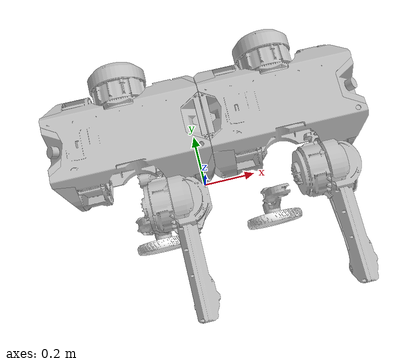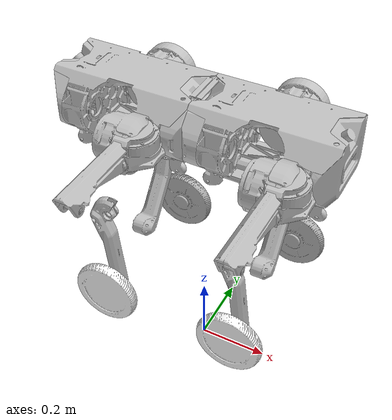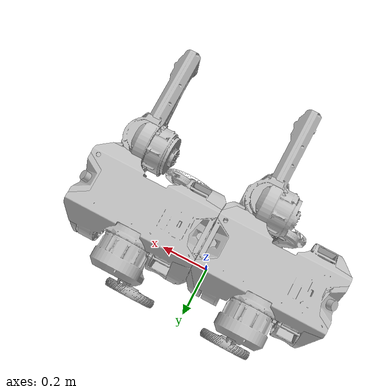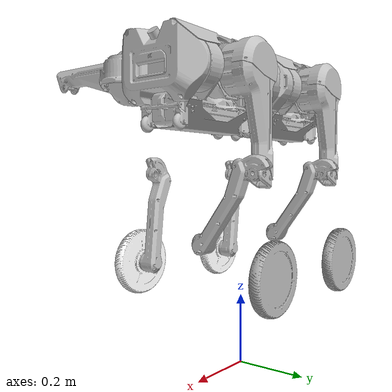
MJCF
<mujoco model="d1_description">
  <compiler angle="radian" meshdir="../../../../d1h_description/share/d1h_description/meshes/"
    autolimits="true" />
  <option cone="elliptic" impratio="100" />

  <default>
    <default class="d1">
      <geom friction="0.4" margin="0.001" condim="1" />
      <joint axis="0 1 0" damping="0.1" armature="0.01" frictionloss="0.2" />
      <default class="visual">
        <geom type="mesh" contype="0" conaffinity="0" group="2" density="0" />
      </default>
      <default class="collision">
        <geom group="3" />
      </default>
    </default>
  </default>

  <asset>
    <mesh name="base_link" file="base_link.STL" />
    <mesh name="funtion_Link" file="funtion_Link.STL" />
    <mesh name="docking_Link" file="docking_Link.STL" />
    <mesh name="L_hip" file="L_hip.STL" />
    <mesh name="L_thigh" file="L_thigh.STL" />
    <mesh name="L_calf" file="L_calf.STL" />
    <mesh name="L_foot" file="L_foot.STL" />
    <mesh name="R_hip" file="R_hip.STL" />
    <mesh name="R_thigh" file="R_thigh.STL" />
    <mesh name="R_calf" file="R_calf.STL" />
    <mesh name="R_foot" file="R_foot.STL" />
  </asset>

  <worldbody>
    <body name="base_link" pos="0 0 0.8" childclass="d1">
      <inertial pos="0.0298675 0.000146849 -0.0146567"
        quat="0.00194962 0.703088 0.00143987 0.711099" mass="22.6528"
        diaginertia="1.04095 1.02354 0.194945" />
      <site name="trunk_imu" size="0.01" />
      <joint name="floating_base_joint" type="free" limited="false" actuatorfrclimited="false" />

      <geom pos="0.1875 0 0" quat="1 0 0 0" type="mesh" class="visual"
        rgba="0.75294 0.75294 0.75294 1" mesh="base_link" />
      <geom size="0.1375 0.075 0.0875" pos="0.1875 0 0" type="box" class="collision"
        rgba="0.75294 0.75294 0.75294 1" />
      <geom size="0.155 0.06 0.03" pos="0.1875 0 -0.12" type="box" class="collision"
        rgba="0.75294 0.75294 0.75294 1" />
      <geom pos="0.342 0 0" quat="1 0 0 0" type="mesh" class="visual"
        rgba="0.75294 0.75294 0.75294 1" mesh="funtion_Link" />
      <geom size="0.02475 0.075 0.0875" pos="0.35 0 0" type="box" class="collision"
        rgba="0.75294 0.75294 0.75294 1" />
      <geom pos="0.0005 0 0" quat="1 0 0 0" type="mesh" class="visual"
        rgba="0.75294 0.75294 0.75294 1" mesh="docking_Link" />
      <geom size="0.04255 0.075 0.0875" pos="0.007 0 0" type="box" class="collision"
        rgba="0.75294 0.75294 0.75294 1" />
      <geom pos="-0.1875 0 0" quat="1 0 0 0" type="mesh" class="visual"
        rgba="0.75294 0.75294 0.75294 1" mesh="base_link" />
      <geom size="0.1375 0.075 0.0875" pos="-0.1875 0 0" type="box" class="collision"
        rgba="0.75294 0.75294 0.75294 1" />
      <geom size="0.155 0.06 0.03" pos="-0.1875 0 -0.12" type="box" class="collision"
        rgba="0.75294 0.75294 0.75294 1" />
      <geom pos="-0.342 0 0" quat="1.32679e-06 0 0 1" type="mesh" class="visual"
        rgba="0.75294 0.75294 0.75294 1" mesh="funtion_Link" />
      <geom size="0.02475 0.075 0.0875" pos="-0.35 2.12287e-08 0" quat="1.32679e-06 0 0 1"
        type="box" class="collision" rgba="0.75294 0.75294 0.75294 1" />
      <geom pos="-0.0005 0 0" quat="1.32679e-06 0 0 1" type="mesh" class="visual"
        rgba="0.75294 0.75294 0.75294 1" mesh="docking_Link" />
      <geom size="0.04255 0.075 0.0875" pos="-0.007 1.72483e-08 0" quat="1.32679e-06 0 0 1"
        type="box" class="collision" rgba="0.75294 0.75294 0.75294 1" />
      <body name="FL_hip" pos="0.282 0.0775 0" quat="0.499998 0.5 0.500002 0.5">
        <inertial pos="-0.0181435 -7.96e-06 -0.0936513"
          quat="0.999969 0.002505 0.00743808 -9.41679e-05" mass="1.69464"
          diaginertia="0.00379302 0.0027607 0.00214447" />
        <joint name="FL_hip_joint" pos="0 0 0" axis="0 0 1" range="-0.785398 0.785398"
          actuatorfrcrange="-80 80" />
        <geom type="mesh" class="visual" rgba="0.75294 0.75294 0.75294 1" mesh="L_hip" />
        <body name="FL_thigh" pos="0.0905 0 -0.0945" quat="0.500098 -0.5001 0.499902 -0.4999">
          <inertial pos="0.0289509 0.00356333 -0.0281156"
            quat="-0.0769104 0.652025 5.23527e-05 0.754286" mass="2.55232"
            diaginertia="0.0182972 0.0174693 0.00380065" />
          <joint name="FL_thigh_joint" pos="0 0 0" axis="0 0 1" range="-1.8326 3.40339"
            actuatorfrcrange="-80 80" />
          <geom type="mesh" class="visual" rgba="0.75294 0.75294 0.75294 1" mesh="L_thigh" />
          <geom size="0.13 0.045 0.025" pos="0.06 0.02 0" quat="0.991445 0 0 0.130526" type="box"
            class="collision" rgba="0.75294 0.75294 0.75294 1" />
          <body name="FL_calf" pos="0.25 0 0">
            <inertial pos="0.125063 0.00606587 0.00312587"
              quat="-0.0425827 0.690156 -0.0920102 0.716523" mass="0.46345"
              diaginertia="0.00494513 0.00490922 0.000208685" />
            <joint name="FL_calf_joint" pos="0 0 0" axis="0 0 1" range="-2.775 -0.855"
              actuatorfrcrange="-80 80" />
            <geom type="mesh" class="visual" rgba="0.75294 0.75294 0.75294 1" mesh="L_calf" />
            <geom size="0.12 0.02 0.025" pos="0.15 0.01 0" quat="0.9992 0 0 -0.0399893" type="box"
              class="collision" rgba="0.75294 0.75294 0.75294 1" />
            <body name="FL_foot" pos="0.25 0 0.052166">
              <inertial pos="-2.82e-06 0 -0.00091845" quat="0.334356 0.623085 -0.334302 0.623067"
                mass="1.6631" diaginertia="0.00760863 0.00398501 0.00393673" />
              <joint name="FL_foot_joint" pos="0 0 0" axis="0 0 1" range="-1000000 1000000"
                actuatorfrcrange="-12 12" />
              <geom type="mesh" class="visual" rgba="0.698039 0.698039 0.698039 1" mesh="L_foot" />
              <geom size="0.087 0.02" type="cylinder" class="collision"
                rgba="0.698039 0.698039 0.698039 1" />
            </body>
          </body>
        </body>
      </body>
      <body name="FR_hip" pos="0.282 -0.0775 0" quat="0.499998 0.5 0.500002 0.5">
        <inertial pos="0.0181435 -8e-06 -0.0936513" quat="0.999969 0.002505 -0.00743808 9.41679e-05"
          mass="1.69464" diaginertia="0.00379302 0.0027607 0.00214447" />
        <joint name="FR_hip_joint" pos="0 0 0" axis="0 0 1" range="-0.785398 0.785398"
          actuatorfrcrange="-80 80" />
        <geom type="mesh" class="visual" rgba="0.75294 0.75294 0.75294 1" mesh="R_hip" />
        <body name="FR_thigh" pos="-0.0905 0 -0.0945" quat="0.499898 -0.4999 0.500102 -0.5001">
          <inertial pos="0.0291816 0.00370278 0.0281157"
            quat="0.00133055 0.754556 0.0787582 0.651491" mass="2.55232"
            diaginertia="0.0182666 0.0174178 0.0038092" />
          <joint name="FR_thigh_joint" pos="0 0 0" axis="0 0 1" range="-1.8326 3.40339"
            actuatorfrcrange="-80 80" />
          <geom type="mesh" class="visual" rgba="0.752941 0.752941 0.752941 1" mesh="R_thigh" />
          <geom size="0.13 0.045 0.025" pos="0.06 0.02 0" quat="0.991445 0 0 0.130526" type="box"
            class="collision" rgba="0.752941 0.752941 0.752941 1" />
          <body name="FR_calf" pos="0.25 0 0">
            <inertial pos="0.125064 0.00606606 -0.0031258"
              quat="0.0919975 0.716523 0.0425713 0.690159" mass="0.463455"
              diaginertia="0.00494517 0.00490926 0.000208687" />
            <joint name="FR_calf_joint" pos="0 0 0" axis="0 0 1" range="-2.775 -0.855"
              actuatorfrcrange="-80 80" />
            <geom type="mesh" class="visual" rgba="0.752941 0.752941 0.752941 1" mesh="R_calf" />
            <geom size="0.12 0.02 0.025" pos="0.15 0.01 0" quat="0.9992 0 0 -0.0399893" type="box"
              class="collision" rgba="0.752941 0.752941 0.752941 1" />
            <body name="FR_foot" pos="0.25 0 -0.052166" quat="0.363988 0 0 0.931404">
              <inertial pos="-2.78e-06 0 0.00091859" quat="0.333846 0.623312 -0.3339 0.62333"
                mass="1.6631" diaginertia="0.00760867 0.00398497 0.0039368" />
              <joint name="FR_foot_joint" pos="0 0 0" axis="0 0 1" range="-1000000 1000000"
                actuatorfrcrange="-12 12" />
              <geom type="mesh" class="visual" rgba="1 1 1 1" mesh="R_foot" />
              <geom size="0.087 0.02" type="cylinder" class="collision" rgba="1 1 1 1" />
            </body>
          </body>
        </body>
      </body>
      <body name="RL_hip" pos="-0.093 0.0775 0" quat="0.499998 0.5 0.500002 0.5">
        <inertial pos="-0.0181435 -7.96e-06 -0.0936513"
          quat="0.999969 0.002505 0.00743808 -9.41679e-05" mass="1.69464"
          diaginertia="0.00379302 0.0027607 0.00214447" />
        <joint name="RL_hip_joint" pos="0 0 0" axis="0 0 1" range="-0.785398 0.785398"
          actuatorfrcrange="-80 80" />
        <geom type="mesh" class="visual" rgba="0.75294 0.75294 0.75294 1" mesh="L_hip" />
        <body name="RL_thigh" pos="0.0905 0 -0.0945" quat="0.500098 -0.5001 0.499902 -0.4999">
          <inertial pos="0.0289509 0.00356333 -0.0281156"
            quat="-0.0769104 0.652025 5.23527e-05 0.754286" mass="2.55232"
            diaginertia="0.0182972 0.0174693 0.00380065" />
          <joint name="RL_thigh_joint" pos="0 0 0" axis="0 0 1" range="-1.8326 3.40339"
            actuatorfrcrange="-80 80" />
          <geom type="mesh" class="visual" rgba="0.75294 0.75294 0.75294 1" mesh="L_thigh" />
          <geom size="0.13 0.045 0.025" pos="0.06 0.02 0" quat="0.991445 0 0 0.130526" type="box"
            class="collision" rgba="0.75294 0.75294 0.75294 1" />
          <body name="RL_calf" pos="0.25 0 0">
            <inertial pos="0.125063 0.00606587 0.00312587"
              quat="-0.0425827 0.690156 -0.0920102 0.716523" mass="0.46345"
              diaginertia="0.00494513 0.00490922 0.000208685" />
            <joint name="RL_calf_joint" pos="0 0 0" axis="0 0 1" range="-2.775 -0.855"
              actuatorfrcrange="-80 80" />
            <geom type="mesh" class="visual" rgba="0.75294 0.75294 0.75294 1" mesh="L_calf" />
            <geom size="0.12 0.02 0.025" pos="0.15 0.01 0" quat="0.9992 0 0 -0.0399893" type="box"
              class="collision" rgba="0.75294 0.75294 0.75294 1" />
            <body name="RL_foot" pos="0.25 0 0.052166">
              <inertial pos="-2.82e-06 0 -0.00091845" quat="0.334356 0.623085 -0.334302 0.623067"
                mass="1.6631" diaginertia="0.00760863 0.00398501 0.00393673" />
              <joint name="RL_foot_joint" pos="0 0 0" axis="0 0 1" range="-1000000 1000000"
                actuatorfrcrange="-12 12" />
              <geom type="mesh" class="visual" rgba="0.698039 0.698039 0.698039 1" mesh="L_foot" />
              <geom size="0.087 0.02" type="cylinder" class="collision"
                rgba="0.698039 0.698039 0.698039 1" />
            </body>
          </body>
        </body>
      </body>
      <body name="RR_hip" pos="-0.093 -0.0775 0" quat="0.499998 0.5 0.500002 0.5">
        <inertial pos="0.0181435 -8e-06 -0.0936513" quat="0.999969 0.002505 -0.00743808 9.41679e-05"
          mass="1.69464" diaginertia="0.00379302 0.0027607 0.00214447" />
        <joint name="RR_hip_joint" pos="0 0 0" axis="0 0 1" range="-0.785398 0.785398"
          actuatorfrcrange="-80 80" />
        <geom type="mesh" class="visual" rgba="0.75294 0.75294 0.75294 1" mesh="R_hip" />
        <body name="RR_thigh" pos="-0.0905 0 -0.0945" quat="0.499898 -0.4999 0.500102 -0.5001">
          <inertial pos="0.0291816 0.00370278 0.0281157"
            quat="0.00133055 0.754556 0.0787582 0.651491" mass="2.55232"
            diaginertia="0.0182666 0.0174178 0.0038092" />
          <joint name="RR_thigh_joint" pos="0 0 0" axis="0 0 1" range="-1.8326 3.40339"
            actuatorfrcrange="-80 80" />
          <geom type="mesh" class="visual" rgba="0.752941 0.752941 0.752941 1" mesh="R_thigh" />
          <geom size="0.13 0.045 0.025" pos="0.06 0.02 0" quat="0.991445 0 0 0.130526" type="box"
            class="collision" rgba="0.752941 0.752941 0.752941 1" />
          <body name="RR_calf" pos="0.25 0 0">
            <inertial pos="0.125064 0.00606606 -0.0031258"
              quat="0.0919975 0.716523 0.0425713 0.690159" mass="0.463455"
              diaginertia="0.00494517 0.00490926 0.000208687" />
            <joint name="RR_calf_joint" pos="0 0 0" axis="0 0 1" range="-2.775 -0.855"
              actuatorfrcrange="-80 80" />
            <geom type="mesh" class="visual" rgba="0.752941 0.752941 0.752941 1" mesh="R_calf" />
            <geom size="0.12 0.02 0.025" pos="0.15 0.01 0" quat="0.9992 0 0 -0.0399893" type="box"
              class="collision" rgba="0.752941 0.752941 0.752941 1" />
            <body name="RR_foot" pos="0.25 0 -0.052166" quat="0.363988 0 0 0.931404">
              <inertial pos="-2.78e-06 0 0.00091859" quat="0.333846 0.623312 -0.3339 0.62333"
                mass="1.6631" diaginertia="0.00760867 0.00398497 0.0039368" />
              <joint name="RR_foot_joint" pos="0 0 0" axis="0 0 1" range="-1000000 1000000"
                actuatorfrcrange="-12 12" />
              <geom type="mesh" class="visual" rgba="1 1 1 1" mesh="R_foot" />
              <geom size="0.087 0.02" type="cylinder" class="collision" rgba="1 1 1 1" />
            </body>
          </body>
        </body>
      </body>
    </body>
  </worldbody>
  <actuator>
    <motor name="FL_hip" joint="FL_hip_joint" />
    <motor name="FL_thigh" joint="FL_thigh_joint" />
    <motor name="FL_calf" joint="FL_calf_joint" />
    <motor name="FL_foot" joint="FL_foot_joint" />

    <motor name="FR_hip" joint="FR_hip_joint" />
    <motor name="FR_thigh" joint="FR_thigh_joint" />
    <motor name="FR_calf" joint="FR_calf_joint" />
    <motor name="FR_foot" joint="FR_foot_joint" />

    <motor name="RL_hip" joint="RL_hip_joint" />
    <motor name="RL_thigh" joint="RL_thigh_joint" />
    <motor name="RL_calf" joint="RL_calf_joint" />
    <motor name="RL_foot" joint="RL_foot_joint" />

    <motor name="RR_hip" joint="RR_hip_joint" />
    <motor name="RR_thigh" joint="RR_thigh_joint" />
    <motor name="RR_calf" joint="RR_calf_joint" />
    <motor name="RR_foot" joint="RR_foot_joint" />
  </actuator>

  <sensor>
    <jointpos name="FL_hip_pos" joint="FL_hip_joint" />
    <jointpos name="FL_thigh_pos" joint="FL_thigh_joint" />
    <jointpos name="FL_calf_pos" joint="FL_calf_joint" />
    <jointpos name="FL_foot_pos" joint="FL_foot_joint" />

    <jointpos name="FR_hip_pos" joint="FR_hip_joint" />
    <jointpos name="FR_thigh_pos" joint="FR_thigh_joint" />
    <jointpos name="FR_calf_pos" joint="FR_calf_joint" />
    <jointpos name="FR_foot_pos" joint="FR_foot_joint" />

    <jointpos name="RL_hip_pos" joint="RL_hip_joint" />
    <jointpos name="RL_thigh_pos" joint="RL_thigh_joint" />
    <jointpos name="RL_calf_pos" joint="RL_calf_joint" />
    <jointpos name="RL_foot_pos" joint="RL_foot_joint" />

    <jointpos name="RR_hip_pos" joint="RR_hip_joint" />
    <jointpos name="RR_thigh_pos" joint="RR_thigh_joint" />
    <jointpos name="RR_calf_pos" joint="RR_calf_joint" />
    <jointpos name="RR_foot_pos" joint="RR_foot_joint" />

    <jointvel name="FL_hip_vel" joint="FL_hip_joint" />
    <jointvel name="FL_thigh_vel" joint="FL_thigh_joint" />
    <jointvel name="FL_calf_vel" joint="FL_calf_joint" />
    <jointvel name="FL_foot_vel" joint="FL_foot_joint" />

    <jointvel name="FR_hip_vel" joint="FR_hip_joint" />
    <jointvel name="FR_thigh_vel" joint="FR_thigh_joint" />
    <jointvel name="FR_calf_vel" joint="FR_calf_joint" />
    <jointvel name="FR_foot_vel" joint="FR_foot_joint" />

    <jointvel name="RL_hip_vel" joint="RL_hip_joint" />
    <jointvel name="RL_thigh_vel" joint="RL_thigh_joint" />
    <jointvel name="RL_calf_vel" joint="RL_calf_joint" />
    <jointvel name="RL_foot_vel" joint="RL_foot_joint" />

    <jointvel name="RR_hip_vel" joint="RR_hip_joint" />
    <jointvel name="RR_thigh_vel" joint="RR_thigh_joint" />
    <jointvel name="RR_calf_vel" joint="RR_calf_joint" />
    <jointvel name="RR_foot_vel" joint="RR_foot_joint" />

    <jointactuatorfrc name="FL_hip_torque" joint="FL_hip_joint" noise="0.01" />
    <jointactuatorfrc name="FL_thigh_torque" joint="FL_thigh_joint" noise="0.01" />
    <jointactuatorfrc name="FL_calf_torque" joint="FL_calf_joint" noise="0.01" />
    <jointactuatorfrc name="FL_foot_torque" joint="FL_foot_joint" noise="0.01" />

    <jointactuatorfrc name="FR_hip_torque" joint="FR_hip_joint" noise="0.01" />
    <jointactuatorfrc name="FR_thigh_torque" joint="FR_thigh_joint" noise="0.01" />
    <jointactuatorfrc name="FR_calf_torque" joint="FR_calf_joint" noise="0.01" />
    <jointactuatorfrc name="FR_foot_torque" joint="FR_foot_joint" noise="0.01" />

    <jointactuatorfrc name="RL_hip_torque" joint="RL_hip_joint" noise="0.01" />
    <jointactuatorfrc name="RL_thigh_torque" joint="RL_thigh_joint" noise="0.01" />
    <jointactuatorfrc name="RL_calf_torque" joint="RL_calf_joint" noise="0.01" />
    <jointactuatorfrc name="RL_foot_torque" joint="RL_foot_joint" noise="0.01" />

    <jointactuatorfrc name="RR_hip_torque" joint="RR_hip_joint" noise="0.01" />
    <jointactuatorfrc name="RR_thigh_torque" joint="RR_thigh_joint" noise="0.01" />
    <jointactuatorfrc name="RR_calf_torque" joint="RR_calf_joint" noise="0.01" />
    <jointactuatorfrc name="RR_foot_torque" joint="RR_foot_joint" noise="0.01" />

    <framequat name="trunk_quat" objtype="site" objname="trunk_imu" />
    <gyro name="trunk_gyro" site="trunk_imu" />
    <accelerometer name="trunk_accel" site="trunk_imu" />

    <framepos name="frame_pos" objtype="site" objname="trunk_imu" />
    <framelinvel name="frame_vel" objtype="site" objname="trunk_imu" />
  </sensor>
</mujoco>
